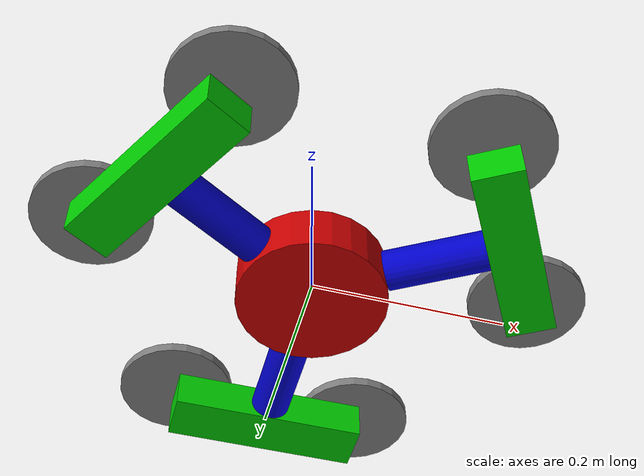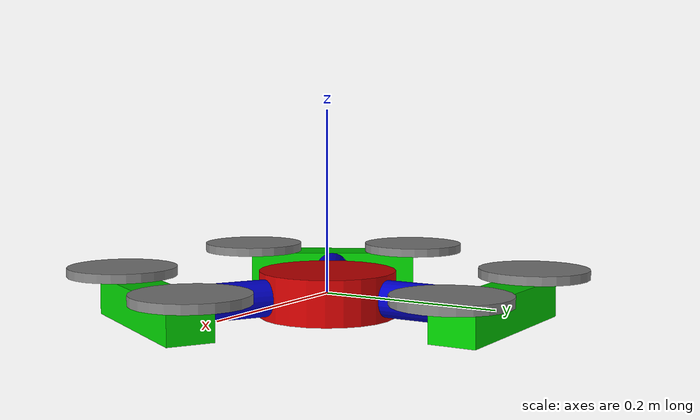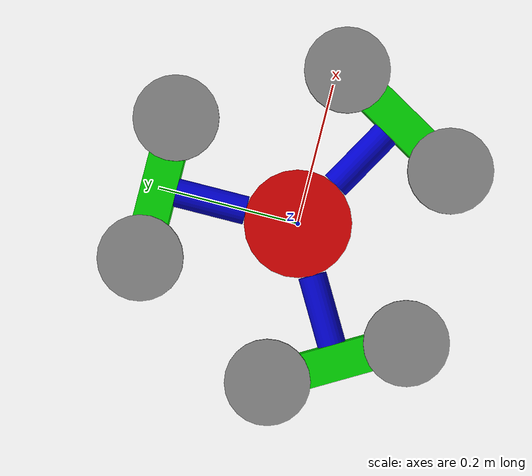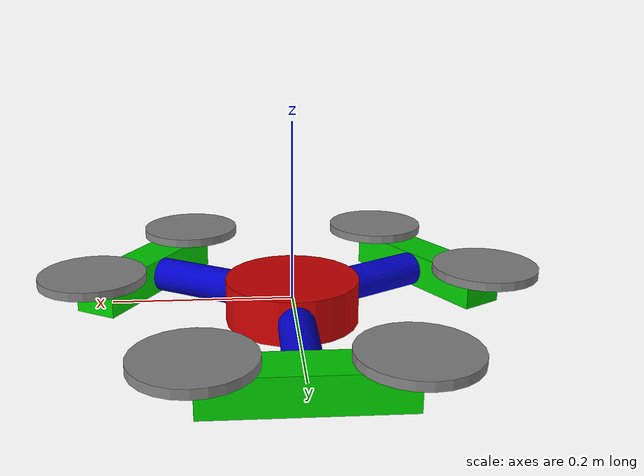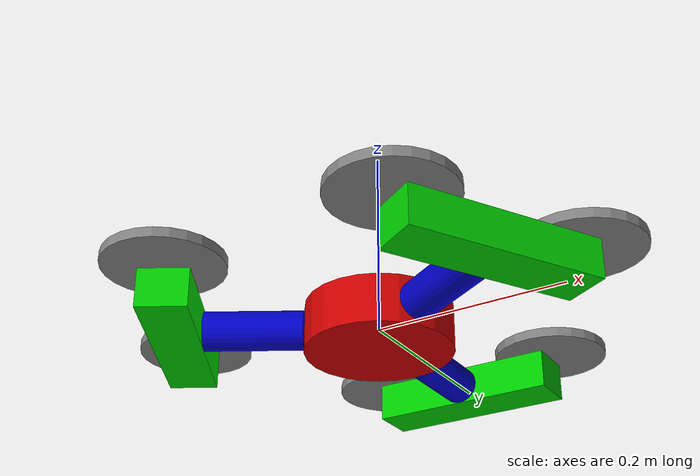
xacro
<?xml version="1.0"?>
<robot name="hex_rotor" xmlns:xacro="http://ros.org/wiki/xacro" xmlns:drake="http://mit.edu">

  <!-- File Conventions
    - mass (kg)
    - length (m)
    - inertia (kgm^2)
    -
  -->

  <!-- TO DO
    - update dimensions
    -
  -->

  <!-- #region Xacro Definitions -->
  <xacro:property name="pi" value="3.141592653589793"/>
  <xacro:property name="zero_origin" value = "0.0 0.0 0.0"/>
  <xacro:property name="zero_rpy" value = "0.0 0.0 0.0"/>

  <xacro:property name="base_radius" value = "${0.15/2}"/>
  <xacro:property name="base_length" value = "0.05"/>
  <xacro:property name="base_origin" value = "${zero_origin}"/>
  <xacro:property name="base_mass" value = "0.5"/>
  <xacro:property name="base_ixx" value = "${(base_mass*base_radius**2)/4 + (base_mass*base_length**2)/12}"/>
  <xacro:property name="base_iyy" value = "${(base_mass*base_radius**2)/4 + (base_mass*base_length**2)/12}"/>
  <xacro:property name="base_izz" value = "${(base_mass*base_radius**2)/2}"/>
  <xacro:property name="base_ixy" value = "0.0"/>
  <xacro:property name="base_ixz" value = "0.0"/>
  <xacro:property name="base_iyz" value = "0.0"/>

  <xacro:property name="arm_radius" value = "0.02"/>
  <xacro:property name="arm_length" value = "0.1"/>
  <xacro:property name="arm_origin" value = "0.0 0.0 ${arm_length/2}"/>
  <xacro:property name="arm_mass" value = "0.05"/>
  <xacro:property name="arm_ixx" value = "${(arm_mass*arm_radius**2)/4 + (arm_mass*arm_length**2)/3}"/>
  <xacro:property name="arm_iyy" value = "${(arm_mass*arm_radius**2)/4 + (arm_mass*arm_length**2)/3}"/>
  <xacro:property name="arm_izz" value = "${(arm_mass*arm_radius**2)/2}"/>
  <xacro:property name="arm_ixy" value = "0.0"/>
  <xacro:property name="arm_ixz" value = "0.0"/>
  <xacro:property name="arm_iyz" value = "0.0"/>
  <xacro:property name="arm_joint_axis" value = "0.0 0.0 1.0"/>
  <xacro:property name="arm_joint_limit" value = "${4*pi}"/>
  <xacro:property name="arm_joint_effort" value = "0.0"/>

  <xacro:property name="split_xsize" value = "0.2"/>
  <xacro:property name="split_ysize" value = "${2*arm_radius}"/>
  <xacro:property name="split_zsize" value = "0.05"/>
  <xacro:property name="split_origin" value = "0.0 0.0 ${split_zsize/2}"/>
  <xacro:property name="split_mass" value = "0.1"/>
  <xacro:property name="split_ixx" value = "${(split_mass*(split_ysize**2+split_zsize**2))/12 + split_mass*(split_zsize/2)**2}"/>
  <xacro:property name="split_iyy" value = "${(split_mass*(split_xsize**2+split_zsize**2))/12 + split_mass*(split_zsize/2)**2}"/>
  <xacro:property name="split_izz" value = "${(split_mass*(split_xsize**2+split_ysize**2))/12}"/>
  <xacro:property name="split_ixy" value = "0.0"/>
  <xacro:property name="split_ixz" value = "0.0"/>
  <xacro:property name="split_iyz" value = "0.0"/>
  <xacro:property name="split_joint_origin" value = "0.0 0.0 ${arm_length}"/>

  <xacro:property name="prop_radius" value = "0.06"/>
  <xacro:property name="prop_length" value = "0.01"/>
  <xacro:property name="prop_origin" value = "0.0 0.0 ${prop_length/2}"/>
  <xacro:property name="prop_mass" value = "0.001"/>
  <xacro:property name="prop_ixx" value = "${(prop_mass*prop_radius**2)/4 + (prop_mass*prop_length**2)/12}"/>
  <xacro:property name="prop_iyy" value = "${(prop_mass*prop_radius**2)/4 + (prop_mass*prop_length**2)/12}"/>
  <xacro:property name="prop_izz" value = "${(prop_mass*prop_radius**2)/2}"/>
  <xacro:property name="prop_ixy" value = "0.0"/>
  <xacro:property name="prop_ixz" value = "0.0"/>
  <xacro:property name="prop_iyz" value = "0.0"/>
  <xacro:property name="prop_joint_origin_r" value = "${split_xsize/2} ${-split_ysize/2} ${split_zsize/2}"/>
  <xacro:property name="prop_joint_origin_l" value = "${-split_xsize/2} ${-split_ysize/2} ${split_zsize/2}"/>
  <xacro:property name="prop_joint_rpy" value = "${pi/2} 0.0 0.0"/>
  <!-- #endregion -->

  <!-- #region Material Definitions -->
  <material name="gray">
    <color rgba="0.5 0.5 0.5 1.0"/>
  </material>
  <material name="red">
    <color rgba="0.8 0.0 0.0 1.0"/>
  </material>
  <material name="green">
    <color rgba="0.0 0.8 0.0 1.0"/>
  </material>
  <material name="blue">
    <color rgba="0.0 0.0 0.8 1.0"/>
  </material>
  <!-- #endregion -->

  <!-- #region Rotor Base -->
  <link name="rotor_base">
    <inertial>
      <origin xyz="${zero_origin}" rpy="${zero_rpy}"/>
      <mass value="${base_mass}"/>
      <inertia ixx="${base_ixx}" ixy="${base_ixy}" ixz="${base_ixz}" iyy="${base_iyy}" iyz="${base_iyz}" izz="${base_izz}"/>
    </inertial>
    <visual>
      <origin xyz="${zero_origin}" rpy="${zero_rpy}"/>
      <geometry>
        <cylinder radius="${base_radius}" length="${base_length}"/>
      </geometry>
      <material name="red"/>
    </visual>
    <collision>
      <origin xyz="${zero_origin}" rpy="${zero_rpy}"/>
      <geometry>
        <cylinder radius="${base_radius}" length="${base_length}"/>
      </geometry>
    </collision>
  </link>
  <!-- #endregion -->

  <!-- #region Rotor Arms -->
  <link name="rotor_arm_1">
    <inertial>
      <origin xyz="${arm_origin}" rpy="${zero_rpy}"/>
      <mass value="${arm_mass}"/>
      <inertia ixx="${arm_ixx}" ixy="${arm_ixy}" ixz="${arm_ixz}" iyy="${arm_iyy}" iyz="${arm_iyz}" izz="${arm_izz}"/>
    </inertial>
    <visual>
      <origin xyz="${arm_origin}" rpy="${zero_rpy}"/>
      <geometry>
        <cylinder radius="${arm_radius}" length="${arm_length}"/>
      </geometry>
      <material name="blue"/>
    </visual>
    <collision>
      <origin xyz="${arm_origin}" rpy="${zero_rpy}"/>
      <geometry>
        <cylinder radius="${arm_radius}" length="${arm_length}"/>
      </geometry>
    </collision>
  </link>

  <link name="rotor_arm_2">
    <inertial>
      <origin xyz="${arm_origin}" rpy="${zero_rpy}"/>
      <mass value="${arm_mass}"/>
      <inertia ixx="${arm_ixx}" ixy="${arm_ixy}" ixz="${arm_ixz}" iyy="${arm_iyy}" iyz="${arm_iyz}" izz="${arm_izz}"/>
    </inertial>
    <visual>
      <origin xyz="${arm_origin}" rpy="${zero_rpy}"/>
      <geometry>
        <cylinder radius="${arm_radius}" length="${arm_length}"/>
      </geometry>
      <material name="blue"/>
    </visual>
    <collision>
      <origin xyz="${arm_origin}" rpy="${zero_rpy}"/>
      <geometry>
        <cylinder radius="${arm_radius}" length="${arm_length}"/>
      </geometry>
    </collision>
  </link>

  <link name="rotor_arm_3">
    <inertial>
      <origin xyz="${arm_origin}" rpy="${zero_rpy}"/>
      <mass value="${arm_mass}"/>
      <inertia ixx="${arm_ixx}" ixy="${arm_ixy}" ixz="${arm_ixz}" iyy="${arm_iyy}" iyz="${arm_iyz}" izz="${arm_izz}"/>
    </inertial>
    <visual>
      <origin xyz="${arm_origin}" rpy="${zero_rpy}"/>
      <geometry>
        <cylinder radius="${arm_radius}" length="${arm_length}"/>
      </geometry>
      <material name="blue"/>
    </visual>
    <collision>
      <origin xyz="${arm_origin}" rpy="${zero_rpy}"/>
      <geometry>
        <cylinder radius="${arm_radius}" length="${arm_length}"/>
      </geometry>
    </collision>
  </link>
  <!-- #endregion -->

  <!-- #region Rotor Splits -->
  <link name="rotor_split_1">
    <inertial>
      <origin xyz="${split_origin}" rpy="${zero_rpy}"/>
      <mass value="${split_mass}"/>
      <inertia ixx="${split_ixx}" ixy="${split_ixy}" ixz="${split_ixz}" iyy="${split_iyy}" iyz="${split_iyz}" izz="${split_izz}"/>
    </inertial>
    <visual>
      <origin xyz="${split_origin}" rpy="${zero_rpy}"/>
      <geometry>
        <box size="${split_xsize} ${split_ysize} ${split_zsize}"/>
      </geometry>
      <material name="green"/>
    </visual>
    <collision>
      <origin xyz="${split_origin}" rpy="${zero_rpy}"/>
      <geometry>
        <box size="${split_xsize} ${split_ysize} ${split_zsize}"/>
      </geometry>
    </collision>
  </link>

  <link name="rotor_split_2">
    <inertial>
      <origin xyz="${split_origin}" rpy="${zero_rpy}"/>
      <mass value="${split_mass}"/>
      <inertia ixx="${split_ixx}" ixy="${split_ixy}" ixz="${split_ixz}" iyy="${split_iyy}" iyz="${split_iyz}" izz="${split_izz}"/>
    </inertial>
    <visual>
      <origin xyz="${split_origin}" rpy="${zero_rpy}"/>
      <geometry>
        <box size="${split_xsize} ${split_ysize} ${split_zsize}"/>
      </geometry>
      <material name="green"/>
    </visual>
    <collision>
      <origin xyz="${split_origin}" rpy="${zero_rpy}"/>
      <geometry>
        <box size="${split_xsize} ${split_ysize} ${split_zsize}"/>
      </geometry>
    </collision>
  </link>

  <link name="rotor_split_3">
    <inertial>
      <origin xyz="${split_origin}" rpy="${zero_rpy}"/>
      <mass value="${split_mass}"/>
      <inertia ixx="${split_ixx}" ixy="${split_ixy}" ixz="${split_ixz}" iyy="${split_iyy}" iyz="${split_iyz}" izz="${split_izz}"/>
    </inertial>
    <visual>
      <origin xyz="${split_origin}" rpy="${zero_rpy}"/>
      <geometry>
        <box size="${split_xsize} ${split_ysize} ${split_zsize}"/>
      </geometry>
      <material name="green"/>
    </visual>
    <collision>
      <origin xyz="${split_origin}" rpy="${zero_rpy}"/>
      <geometry>
        <box size="${split_xsize} ${split_ysize} ${split_zsize}"/>
      </geometry>
    </collision>
  </link>
  <!-- #endregion -->

  <!-- #region Rotor Props -->
  <link name="rotor_prop_1r">
    <inertial>
      <origin xyz="${prop_origin}" rpy="${zero_rpy}"/>
      <mass value="${prop_mass}"/>
      <inertia ixx="${prop_ixx}" ixy="${prop_ixy}" ixz="${prop_ixz}" iyy="${prop_iyy}" iyz="${prop_iyz}" izz="${prop_izz}"/>
    </inertial>
    <visual>
      <origin xyz="${prop_origin}" rpy="${zero_rpy}"/>
      <geometry>
        <cylinder radius="${prop_radius}" length="${prop_length}"/>
      </geometry>
      <material name="gray"/>
    </visual>
    <collision>
      <origin xyz="${prop_origin}" rpy="${zero_rpy}"/>
      <geometry>
        <cylinder radius="${prop_radius}" length="${prop_length}"/>
      </geometry>
    </collision>
  </link>

  <link name="rotor_prop_1l">
    <inertial>
      <origin xyz="${prop_origin}" rpy="${zero_rpy}"/>
      <mass value="${prop_mass}"/>
      <inertia ixx="${prop_ixx}" ixy="${prop_ixy}" ixz="${prop_ixz}" iyy="${prop_iyy}" iyz="${prop_iyz}" izz="${prop_izz}"/>
    </inertial>
    <visual>
      <origin xyz="${prop_origin}" rpy="${zero_rpy}"/>
      <geometry>
        <cylinder radius="${prop_radius}" length="${prop_length}"/>
      </geometry>
      <material name="gray"/>
    </visual>
    <collision>
      <origin xyz="${prop_origin}" rpy="${zero_rpy}"/>
      <geometry>
        <cylinder radius="${prop_radius}" length="${prop_length}"/>
      </geometry>
    </collision>
  </link>

  <link name="rotor_prop_2r">
    <inertial>
      <origin xyz="${prop_origin}" rpy="${zero_rpy}"/>
      <mass value="${prop_mass}"/>
      <inertia ixx="${prop_ixx}" ixy="${prop_ixy}" ixz="${prop_ixz}" iyy="${prop_iyy}" iyz="${prop_iyz}" izz="${prop_izz}"/>
    </inertial>
    <visual>
      <origin xyz="${prop_origin}" rpy="${zero_rpy}"/>
      <geometry>
        <cylinder radius="${prop_radius}" length="${prop_length}"/>
      </geometry>
      <material name="gray"/>
    </visual>
    <collision>
      <origin xyz="${prop_origin}" rpy="${zero_rpy}"/>
      <geometry>
        <cylinder radius="${prop_radius}" length="${prop_length}"/>
      </geometry>
    </collision>
  </link>

  <link name="rotor_prop_2l">
    <inertial>
      <origin xyz="${prop_origin}" rpy="${zero_rpy}"/>
      <mass value="${prop_mass}"/>
      <inertia ixx="${prop_ixx}" ixy="${prop_ixy}" ixz="${prop_ixz}" iyy="${prop_iyy}" iyz="${prop_iyz}" izz="${prop_izz}"/>
    </inertial>
    <visual>
      <origin xyz="${prop_origin}" rpy="${zero_rpy}"/>
      <geometry>
        <cylinder radius="${prop_radius}" length="${prop_length}"/>
      </geometry>
      <material name="gray"/>
    </visual>
    <collision>
      <origin xyz="${prop_origin}" rpy="${zero_rpy}"/>
      <geometry>
        <cylinder radius="${prop_radius}" length="${prop_length}"/>
      </geometry>
    </collision>
  </link>

  <link name="rotor_prop_3r">
    <inertial>
      <origin xyz="${prop_origin}" rpy="${zero_rpy}"/>
      <mass value="${prop_mass}"/>
      <inertia ixx="${prop_ixx}" ixy="${prop_ixy}" ixz="${prop_ixz}" iyy="${prop_iyy}" iyz="${prop_iyz}" izz="${prop_izz}"/>
    </inertial>
    <visual>
      <origin xyz="${prop_origin}" rpy="${zero_rpy}"/>
      <geometry>
        <cylinder radius="${prop_radius}" length="${prop_length}"/>
      </geometry>
      <material name="gray"/>
    </visual>
    <collision>
      <origin xyz="${prop_origin}" rpy="${zero_rpy}"/>
      <geometry>
        <cylinder radius="${prop_radius}" length="${prop_length}"/>
      </geometry>
    </collision>
  </link>

  <link name="rotor_prop_3l">
    <inertial>
      <origin xyz="${prop_origin}" rpy="${zero_rpy}"/>
      <mass value="${prop_mass}"/>
      <inertia ixx="${prop_ixx}" ixy="${prop_ixy}" ixz="${prop_ixz}" iyy="${prop_iyy}" iyz="${prop_iyz}" izz="${prop_izz}"/>
    </inertial>
    <visual>
      <origin xyz="${prop_origin}" rpy="${zero_rpy}"/>
      <geometry>
        <cylinder radius="${prop_radius}" length="${prop_length}"/>
      </geometry>
      <material name="gray"/>
    </visual>
    <collision>
      <origin xyz="${prop_origin}" rpy="${zero_rpy}"/>
      <geometry>
        <cylinder radius="${prop_radius}" length="${prop_length}"/>
      </geometry>
    </collision>
  </link>
  <!-- #endregion -->

  <!-- #region Revolute Joints -->
  <joint name="base_to_arm_1" type="revolute">
    <parent link="rotor_base"/>
    <child link="rotor_arm_1"/>
    <origin xyz="0.0 ${base_radius} 0.0" rpy="${-pi/2} 0.0 0.0"/>
    <axis xyz="${arm_joint_axis}"/>
    <limit lower="${-arm_joint_limit}" upper="${arm_joint_limit}" effort="${arm_joint_effort}" velocity="1.0"/>
  </joint>

  <joint name="base_to_arm_2" type="revolute">
    <parent link="rotor_base"/>
    <child link="rotor_arm_2"/>
    <origin xyz="${base_radius*cos(pi/6)} ${-base_radius*sin(pi/6)} 0.0" rpy="${-pi/2} 0.0 ${-pi/6-pi/2}"/>
    <axis xyz="${arm_joint_axis}"/>
    <limit lower="${-arm_joint_limit}" upper="${arm_joint_limit}" effort="${arm_joint_effort}" velocity="1.0"/>
  </joint>

  <joint name="base_to_arm_3" type="revolute">
    <parent link="rotor_base"/>
    <child link="rotor_arm_3"/>
    <origin xyz="${-base_radius*cos(pi/6)} ${-base_radius*sin(pi/6)} 0.0" rpy="${-pi/2} 0.0 ${+pi/6+pi/2}"/>
    <axis xyz="${arm_joint_axis}"/>
    <limit lower="${-arm_joint_limit}" upper="${arm_joint_limit}" effort="${arm_joint_effort}" velocity="1.0"/>
  </joint>
  <!-- #endregion -->

  <!-- #region Fixed Joints -->
  <joint name="arm_to_split_1" type="fixed">
    <parent link="rotor_arm_1"/>
    <child link="rotor_split_1"/>
    <origin xyz="${split_joint_origin}" rpy="${zero_rpy}"/>
  </joint>

  <joint name="arm_to_split_2" type="fixed">
    <parent link="rotor_arm_2"/>
    <child link="rotor_split_2"/>
    <origin xyz="${split_joint_origin}" rpy="${zero_rpy}"/>
  </joint>

  <joint name="arm_to_split_3" type="fixed">
    <parent link="rotor_arm_3"/>
    <child link="rotor_split_3"/>
    <origin xyz="${split_joint_origin}" rpy="${zero_rpy}"/>
  </joint>

  <joint name="split_1_to_prop_r" type="fixed">
    <parent link="rotor_split_1"/>
    <child link="rotor_prop_1r"/>
    <origin xyz="${prop_joint_origin_r}" rpy="${prop_joint_rpy}"/>
  </joint>

  <joint name="split_1_to_prop_l" type="fixed">
    <parent link="rotor_split_1"/>
    <child link="rotor_prop_1l"/>
    <origin xyz="${prop_joint_origin_l}" rpy="${prop_joint_rpy}"/>
  </joint>

  <joint name="split_2_to_prop_r" type="fixed">
    <parent link="rotor_split_2"/>
    <child link="rotor_prop_2r"/>
    <origin xyz="${prop_joint_origin_r}" rpy="${prop_joint_rpy}"/>
  </joint>

  <joint name="split_2_to_prop_l" type="fixed">
    <parent link="rotor_split_2"/>
    <child link="rotor_prop_2l"/>
    <origin xyz="${prop_joint_origin_l}" rpy="${prop_joint_rpy}"/>
  </joint>

  <joint name="split_3_to_prop_r" type="fixed">
    <parent link="rotor_split_3"/>
    <child link="rotor_prop_3r"/>
    <origin xyz="${prop_joint_origin_r}" rpy="${prop_joint_rpy}"/>
  </joint>

  <joint name="split_3_to_prop_l" type="fixed">
    <parent link="rotor_split_3"/>
    <child link="rotor_prop_3l"/>
    <origin xyz="${prop_joint_origin_l}" rpy="${prop_joint_rpy}"/>
  </joint>
  <!-- #endregion -->

  <drake:collision_filter_group name="self_collision_ignore">
    <drake:member link="rotor_base"/>
    <drake:member link="rotor_arm_1"/>
    <drake:member link="rotor_arm_2"/>
    <drake:member link="rotor_arm_3"/>
    <drake:member link="rotor_split_1"/>
    <drake:member link="rotor_split_2"/>
    <drake:member link="rotor_split_3"/>
    <drake:member link="rotor_prop_1r"/>
    <drake:member link="rotor_prop_1l"/>
    <drake:member link="rotor_prop_2r"/>
    <drake:member link="rotor_prop_2l"/>
    <drake:member link="rotor_prop_3r"/>
    <drake:member link="rotor_prop_3l"/>
    <drake:ignored_collision_filter_group name="self_collision_ignore"/>
  </drake:collision_filter_group>

</robot>
